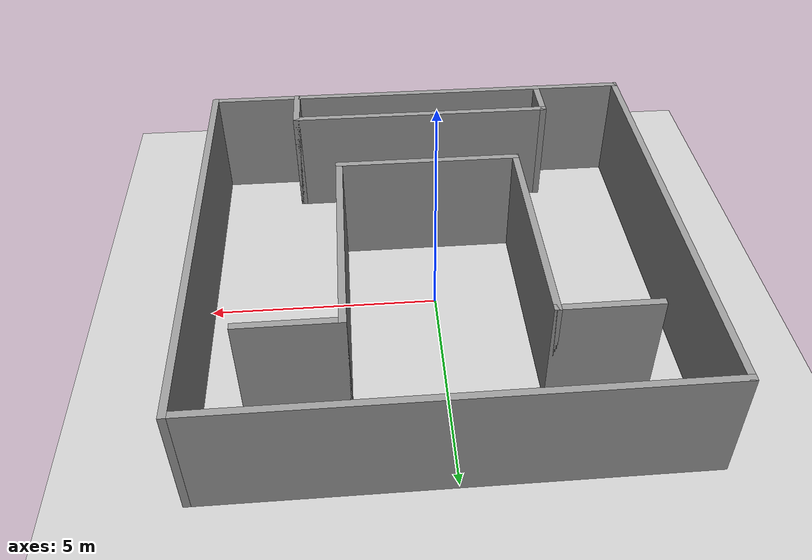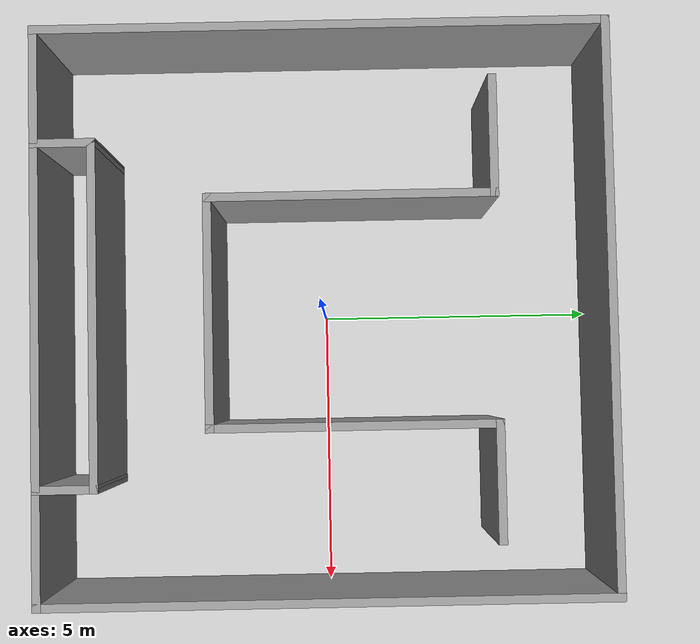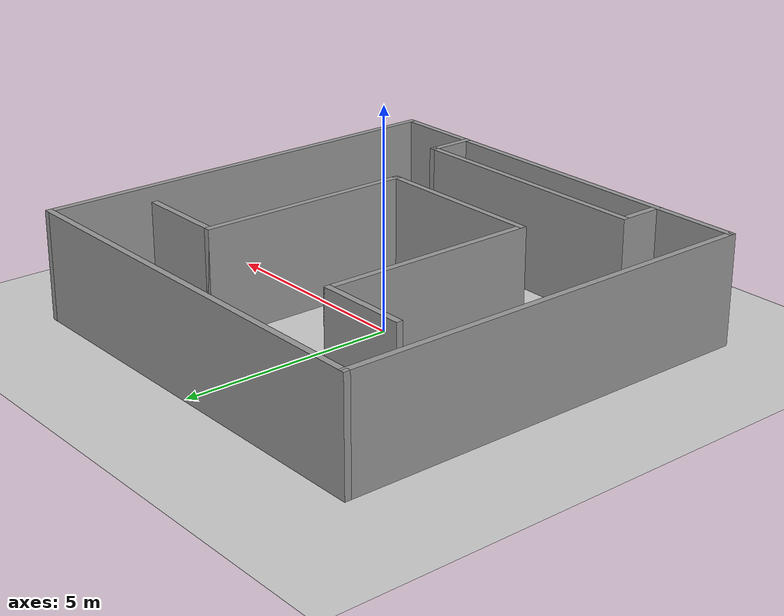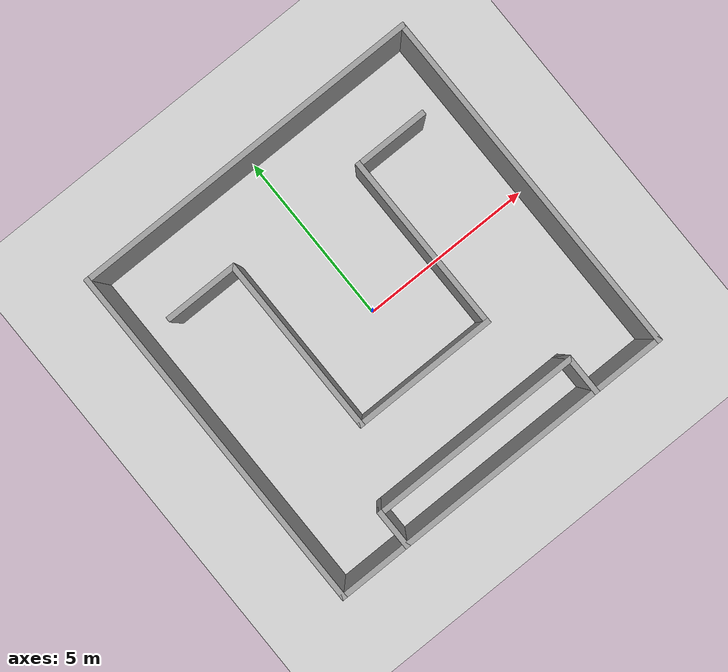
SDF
<sdf version="1.6">
 <world name="default">
  <light name="sun" type="directional">
   <pose>0 0 10 0 -0 0</pose>
   <diffuse>0.8 0.8 0.8 1</diffuse>
   <specular>0.2 0.2 0.2 1</specular>
   <attenuation>
    <range>1000</range>
    <constant>0.9</constant>
    <linear>0.01</linear>
    <quadratic>0.001</quadratic>
   </attenuation>
   <direction>-0.5 0.1 -0.9</direction>
  </light>
  <model name="ground_plane">
   <static>1</static>
   <link name="link">
    <collision name="collision">
     <geometry><plane><normal>0 0 1</normal><size>100 100</size></plane></geometry>
     <surface><friction><ode><mu>100</mu><mu2>50</mu2></ode></friction></surface>
    </collision>
    <visual name="visual">
     <cast_shadows>0</cast_shadows>
     <geometry><plane><normal>0 0 1</normal><size>100 100</size></plane></geometry>
     <material>
      <script><uri>file://media/materials/scripts/gazebo.material</uri><name>Gazebo/Grey</name></script>
     </material>
    </visual>
   </link>
  </model>
  <gravity>0 0 -9.8</gravity>
  <magnetic_field>6e-06 2.3e-05 -4.2e-05</magnetic_field>
  <atmosphere type="adiabatic"/>
  <physics name="default_physics" default="0" type="ode">
   <max_step_size>0.001</max_step_size>
   <real_time_factor>1</real_time_factor>
   <real_time_update_rate>1000</real_time_update_rate>
  </physics>
  <scene><ambient>0.4 0.4 0.4 1</ambient><background>0.7 0.7 0.7 1</background><shadows>1</shadows></scene>
  <audio><device>default</device></audio>
  <spherical_coordinates>
   <surface_model>EARTH_WGS84</surface_model>
   <latitude_deg>0</latitude_deg>
   <longitude_deg>0</longitude_deg>
   <elevation>0</elevation>
   <heading_deg>0</heading_deg>
  </spherical_coordinates>
  <model name="smile">
   <link name="Wall_10">
    <collision name="Wall_10_Collision">
     <geometry><box><size>10.15 0.15 2.5</size></box></geometry>
     <pose>0 0 1.25 0 -0 0</pose>
    </collision>
    <visual name="Wall_10_Visual">
     <pose>0 0 1.25 0 -0 0</pose>
     <geometry><box><size>10.15 0.15 2.5</size></box></geometry>
     <material>
      <script><uri>file://media/materials/scripts/gazebo.material</uri><name>Gazebo/Grey</name></script>
      <ambient>1 1 1 1</ambient>
     </material>
     <meta><layer>0</layer></meta>
    </visual>
    <pose>0 5 0 0 -0 3.14159</pose>
   </link>
   <link name="Wall_12">
    <collision name="Wall_12_Collision">
     <geometry><box><size>2.15 0.15 2.5</size></box></geometry>
     <pose>0 0 1.25 0 -0 0</pose>
    </collision>
    <visual name="Wall_12_Visual">
     <pose>0 0 1.25 0 -0 0</pose>
     <geometry><box><size>2.15 0.15 2.5</size></box></geometry>
     <material>
      <script><uri>file://media/materials/scripts/gazebo.material</uri><name>Gazebo/Grey</name></script>
      <ambient>1 1 1 1</ambient>
     </material>
     <meta><layer>0</layer></meta>
    </visual>
    <pose>-3 3 0 0 -0 0</pose>
   </link>
   <link name="Wall_17">
    <collision name="Wall_17_Collision">
     <geometry><box><size>5.15 0.15 2.5</size></box></geometry>
     <pose>0 0 1.25 0 -0 0</pose>
    </collision>
    <visual name="Wall_17_Visual">
     <pose>0 0 1.25 0 -0 0</pose>
     <geometry><box><size>5.15 0.15 2.5</size></box></geometry>
     <material>
      <script><uri>file://media/materials/scripts/gazebo.material</uri><name>Gazebo/Grey</name></script>
      <ambient>1 1 1 1</ambient>
     </material>
     <meta><layer>0</layer></meta>
    </visual>
    <pose>-2 0.5 0 0 -0 -1.5708</pose>
   </link>
   <link name="Wall_19">
    <collision name="Wall_19_Collision">
     <geometry><box><size>4.15 0.15 2.5</size></box></geometry>
     <pose>0 0 1.25 0 -0 0</pose>
    </collision>
    <visual name="Wall_19_Visual">
     <pose>0 0 1.25 0 -0 0</pose>
     <geometry><box><size>4.15 0.15 2.5</size></box></geometry>
     <material>
      <script><uri>file://media/materials/scripts/gazebo.material</uri><name>Gazebo/Grey</name></script>
      <ambient>1 1 1 1</ambient>
     </material>
     <meta><layer>0</layer></meta>
    </visual>
    <pose>0 -2 0 0 -0 0</pose>
   </link>
   <link name="Wall_20">
    <collision name="Wall_20_Collision">
     <geometry><box><size>5.15 0.15 2.5</size></box></geometry>
     <pose>0 0 1.25 0 -0 0</pose>
    </collision>
    <visual name="Wall_20_Visual">
     <pose>0 0 1.25 0 -0 0</pose>
     <geometry><box><size>5.15 0.15 2.5</size></box></geometry>
     <material>
      <script><uri>file://media/materials/scripts/gazebo.material</uri><name>Gazebo/Grey</name></script>
      <ambient>1 1 1 1</ambient>
     </material>
     <meta><layer>0</layer></meta>
    </visual>
    <pose>2 0.5 0 0 -0 1.5708</pose>
   </link>
   <link name="Wall_21">
    <collision name="Wall_21_Collision">
     <geometry><box><size>2.15 0.15 2.5</size></box></geometry>
     <pose>0 0 1.25 0 -0 0</pose>
    </collision>
    <visual name="Wall_21_Visual">
     <pose>0 0 1.25 0 -0 0</pose>
     <geometry><box><size>2.15 0.15 2.5</size></box></geometry>
     <material>
      <script><uri>file://media/materials/scripts/gazebo.material</uri><name>Gazebo/Grey</name></script>
      <ambient>1 1 1 1</ambient>
     </material>
     <meta><layer>0</layer></meta>
    </visual>
    <pose>3 3 0 0 -0 0</pose>
   </link>
   <link name="Wall_25">
    <collision name="Wall_25_Collision">
     <geometry><box><size>1.15 0.15 2.5</size></box></geometry>
     <pose>0 0 1.25 0 -0 0</pose>
    </collision>
    <visual name="Wall_25_Visual">
     <pose>0 0 1.25 0 -0 0</pose>
     <geometry><box><size>1.15 0.15 2.5</size></box></geometry>
     <material>
      <script><uri>file://media/materials/scripts/gazebo.material</uri><name>Gazebo/Grey</name></script>
      <ambient>1 1 1 1</ambient>
     </material>
     <meta><layer>0</layer></meta>
    </visual>
    <pose>-3 -4.5 0 0 -0 1.5708</pose>
   </link>
   <link name="Wall_26">
    <collision name="Wall_26_Collision">
     <geometry><box><size>6.15 0.15 2.5</size></box></geometry>
     <pose>0 0 1.25 0 -0 0</pose>
    </collision>
    <visual name="Wall_26_Visual">
     <pose>0 0 1.25 0 -0 0</pose>
     <geometry><box><size>6.15 0.15 2.5</size></box></geometry>
     <material>
      <script><uri>file://media/materials/scripts/gazebo.material</uri><name>Gazebo/Grey</name></script>
      <ambient>1 1 1 1</ambient>
     </material>
     <meta><layer>0</layer></meta>
    </visual>
    <pose>0 -4 0 0 -0 0</pose>
   </link>
   <link name="Wall_27">
    <collision name="Wall_27_Collision">
     <geometry><box><size>1.15 0.15 2.5</size></box></geometry>
     <pose>0 0 1.25 0 -0 0</pose>
    </collision>
    <visual name="Wall_27_Visual">
     <pose>0 0 1.25 0 -0 0</pose>
     <geometry><box><size>1.15 0.15 2.5</size></box></geometry>
     <material>
      <script><uri>file://media/materials/scripts/gazebo.material</uri><name>Gazebo/Grey</name></script>
      <ambient>1 1 1 1</ambient>
     </material>
     <meta><layer>0</layer></meta>
    </visual>
    <pose>3 -4.5 0 0 -0 -1.5708</pose>
   </link>
   <link name="Wall_7">
    <collision name="Wall_7_Collision">
     <geometry><box><size>10.15 0.15 2.5</size></box></geometry>
     <pose>0 0 1.25 0 -0 0</pose>
    </collision>
    <visual name="Wall_7_Visual">
     <pose>0 0 1.25 0 -0 0</pose>
     <geometry><box><size>10.15 0.15 2.5</size></box></geometry>
     <material>
      <script><uri>file://media/materials/scripts/gazebo.material</uri><name>Gazebo/Grey</name></script>
      <ambient>1 1 1 1</ambient>
     </material>
     <meta><layer>0</layer></meta>
    </visual>
    <pose>-5 0 0 0 -0 -1.5708</pose>
   </link>
   <link name="Wall_8">
    <collision name="Wall_8_Collision">
     <geometry><box><size>10.15 0.15 2.5</size></box></geometry>
     <pose>0 0 1.25 0 -0 0</pose>
    </collision>
    <visual name="Wall_8_Visual">
     <pose>0 0 1.25 0 -0 0</pose>
     <geometry><box><size>10.15 0.15 2.5</size></box></geometry>
     <material>
      <script><uri>file://media/materials/scripts/gazebo.material</uri><name>Gazebo/Grey</name></script>
      <ambient>1 1 1 1</ambient>
     </material>
     <meta><layer>0</layer></meta>
    </visual>
    <pose>0 -5 0 0 -0 0</pose>
   </link>
   <link name="Wall_9">
    <collision name="Wall_9_Collision">
     <geometry><box><size>10.15 0.15 2.5</size></box></geometry>
     <pose>0 0 1.25 0 -0 0</pose>
    </collision>
    <visual name="Wall_9_Visual">
     <pose>0 0 1.25 0 -0 0</pose>
     <geometry><box><size>10.15 0.15 2.5</size></box></geometry>
     <material>
      <script><uri>file://media/materials/scripts/gazebo.material</uri><name>Gazebo/Grey</name></script>
      <ambient>1 1 1 1</ambient>
     </material>
     <meta><layer>0</layer></meta>
    </visual>
    <pose>5 0 0 0 -0 1.5708</pose>
   </link>
   <static>1</static>
  </model>
 </world>
</sdf>
